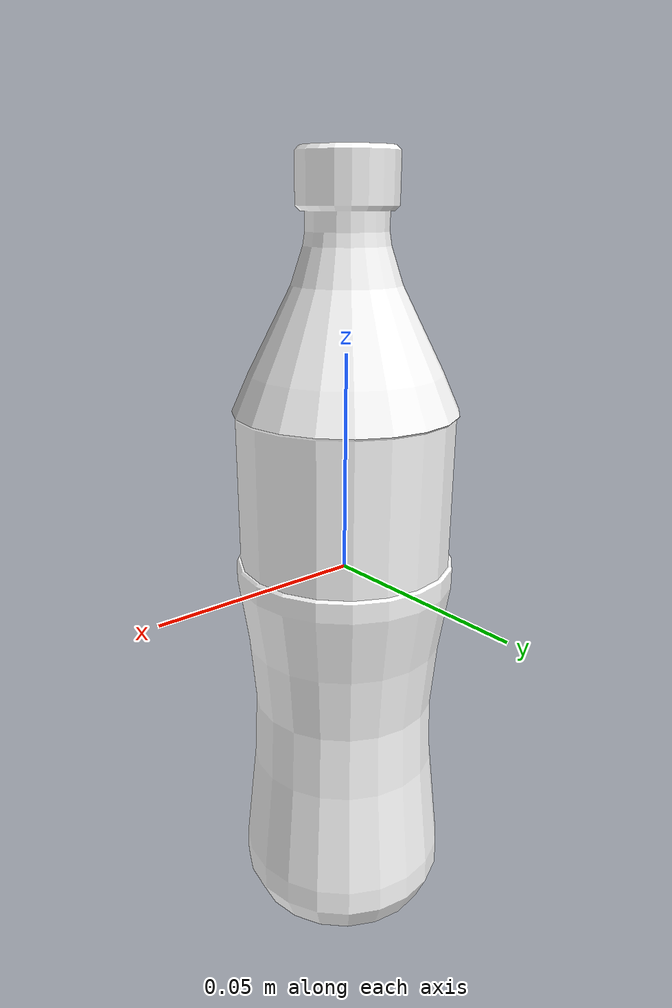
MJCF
<?xml version='1.0' encoding='utf-8'?>
<mujoco model="bottled_water_20">
  <asset>
    <mesh file="visual/model_normalized_0.obj" name="model_normalized_0_vis" scale="0.181818 0.181818 0.181818" refquat="1.0 0.0 0.0 0.0" />
    <mesh file="visual/model_normalized_1.obj" name="model_normalized_1_vis" scale="0.181818 0.181818 0.181818" refquat="1.0 0.0 0.0 0.0" />
    <material name="Sphere" specular="0.5" shininess="0.030996522" rgba="0.000000 0.020556 0.800000 1.0" />
    <material name="material.009" specular="0.5" shininess="0.030996522" rgba="1.000000 1.000000 1.000000 1.0" />
    <mesh file="collision/collision_mesh_collision_0.obj" name="bottled_collision_mesh_0" scale="0.181818 0.181818 0.181818" refquat="1.0 0.0 0.0 0.0" />
    <mesh file="collision/collision_mesh_collision_1.obj" name="bottled_collision_mesh_1" scale="0.181818 0.181818 0.181818" refquat="1.0 0.0 0.0 0.0" />
    <mesh file="collision/collision_mesh_collision_2.obj" name="bottled_collision_mesh_2" scale="0.181818 0.181818 0.181818" refquat="1.0 0.0 0.0 0.0" />
    </asset>
  <default>
    <default class="region">
      <geom group="1" conaffinity="0" contype="0" rgba="0 1 0 0" />
      </default>
    <default class="collision">
      <geom group="3" rgba="0.5 0 0 0.5" density="1000.0" />
      </default>
    </default>
  <worldbody>
    <body>
      <body name="object">
        <geom density="100" friction="0.95 0.3 0.1" type="mesh" mesh="model_normalized_0_vis" conaffinity="0" contype="0" group="1" material="material.009" />
        <geom density="100" friction="0.95 0.3 0.1" type="mesh" mesh="model_normalized_1_vis" conaffinity="0" contype="0" group="1" material="Sphere" />
        <geom class="region" name="reg_bbox" type="box" pos="0.0004241197500000002 3.4800000000001496e-06 0.0005807820000000019" size="0.025401054 0.025408023 0.074419218" />
        <geom mesh="bottled_collision_mesh_0" type="mesh" class="collision"  solref="0.004 1" solimp="0.998 0.998 0.001"/>
        <geom mesh="bottled_collision_mesh_1" type="mesh" class="collision"  solref="0.004 1" solimp="0.998 0.998 0.001"/>
        <geom mesh="bottled_collision_mesh_2" type="mesh" class="collision"  solref="0.004 1" solimp="0.998 0.998 0.001"/>
        </body>
      </body>
    </worldbody>
  </mujoco>
